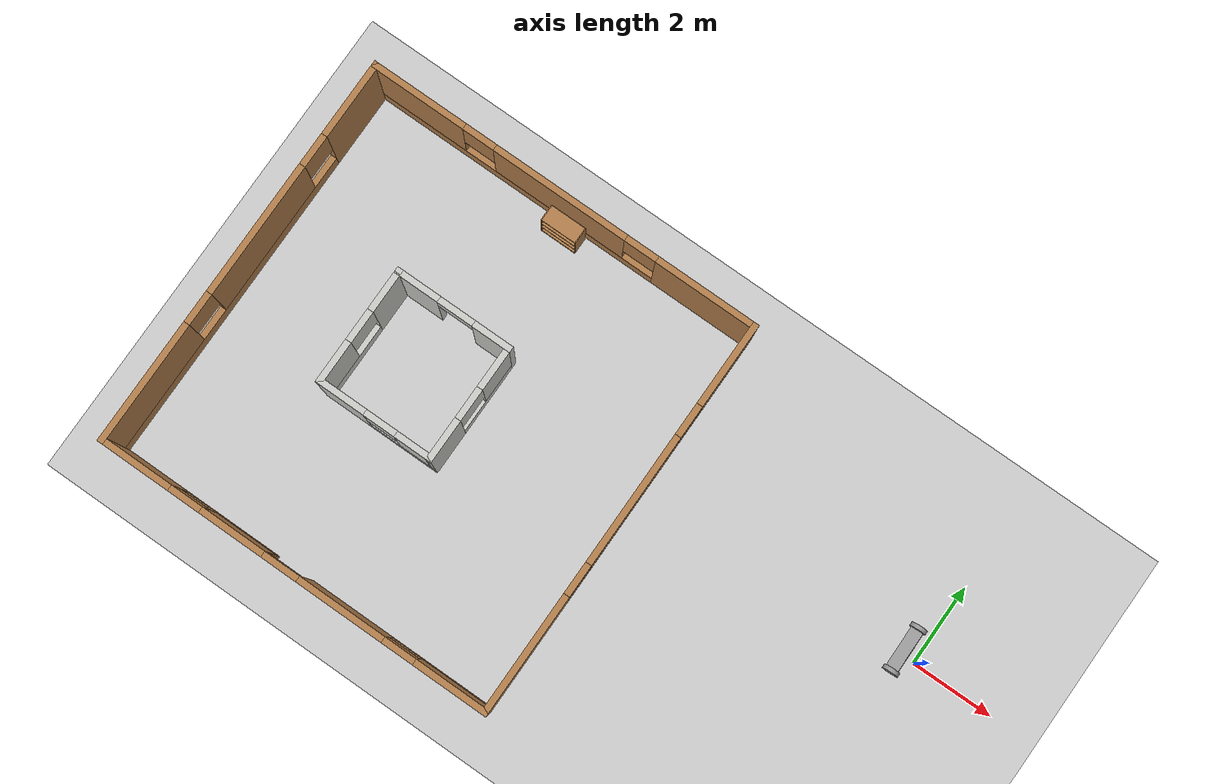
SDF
<sdf version="1.6">
 <world name="default">
  <plugin name="welcome_message" filename="libwelcome_message.so"/>
  <light name="sun" type="directional">
   <pose>0 0 10 0 -0 0</pose>
   <diffuse>0.8 0.8 0.8 1</diffuse>
   <specular>0.2 0.2 0.2 1</specular>
   <attenuation>
    <range>1000</range>
    <constant>0.9</constant>
    <linear>0.01</linear>
    <quadratic>0.001</quadratic>
   </attenuation>
   <direction>-0.5 0.1 -0.9</direction>
  </light>
  <model name="ground_plane">
   <static>1</static>
   <link name="link">
    <collision name="collision">
     <geometry><plane><normal>0 0 1</normal><size>100 100</size></plane></geometry>
     <surface>
      <contact><collide_bitmask>65535</collide_bitmask></contact>
      <friction><ode><mu>100</mu><mu2>50</mu2></ode></friction>
     </surface>
    </collision>
    <visual name="visual">
     <cast_shadows>0</cast_shadows>
     <geometry><plane><normal>0 0 1</normal><size>100 100</size></plane></geometry>
     <material>
      <script><uri>file://media/materials/scripts/gazebo.material</uri><name>Gazebo/Grey</name></script>
     </material>
    </visual>
   </link>
  </model>
  <gravity>0 0 -9.8</gravity>
  <magnetic_field>6e-06 2.3e-05 -4.2e-05</magnetic_field>
  <atmosphere type="adiabatic"/>
  <physics name="default_physics" default="0" type="ode">
   <max_step_size>0.001</max_step_size>
   <real_time_factor>1</real_time_factor>
   <real_time_update_rate>1000</real_time_update_rate>
  </physics>
  <scene><ambient>0.4 0.4 0.4 1</ambient><background>0.7 0.7 0.7 1</background><shadows>1</shadows></scene>
  <spherical_coordinates>
   <surface_model>EARTH_WGS84</surface_model>
   <latitude_deg>0</latitude_deg>
   <longitude_deg>0</longitude_deg>
   <elevation>0</elevation>
   <heading_deg>0</heading_deg>
  </spherical_coordinates>
  <model name="Building">
   <pose>-11.9528 -1.23874 0 0 -0 0</pose>
   <link name="Wall_10">
    <pose>-0.487001 1.567 0 0 -0 3.14159</pose>
    <visual name="Wall_10_Visual_0">
     <pose>-1.01 0 1.25 0 -0 0</pose>
     <geometry><box><size>0.979999 0.15 2.5</size></box></geometry>
     <material>
      <script><uri>file://media/materials/scripts/gazebo.material</uri><name>Gazebo/CeilingTiled</name></script>
      <ambient>1 1 1 1</ambient>
     </material>
     <meta><layer>0</layer></meta>
    </visual>
    <collision name="Wall_10_Collision_0">
     <geometry><box><size>0.979999 0.15 2.5</size></box></geometry>
     <pose>-1.01 0 1.25 0 -0 0</pose>
    </collision>
    <visual name="Wall_10_Visual_1">
     <pose>0.94 0 1.25 0 -0 0</pose>
     <geometry><box><size>1.12 0.15 2.5</size></box></geometry>
     <material>
      <script><uri>file://media/materials/scripts/gazebo.material</uri><name>Gazebo/CeilingTiled</name></script>
      <ambient>1 1 1 1</ambient>
     </material>
     <meta><layer>0</layer></meta>
    </visual>
    <collision name="Wall_10_Collision_1">
     <geometry><box><size>1.12 0.15 2.5</size></box></geometry>
     <pose>0.94 0 1.25 0 -0 0</pose>
    </collision>
    <visual name="Wall_10_Visual_2">
     <pose>-0.070001 0 2.25 0 -0 0</pose>
     <geometry><box><size>0.9 0.15 0.5</size></box></geometry>
     <material>
      <script><uri>file://media/materials/scripts/gazebo.material</uri><name>Gazebo/CeilingTiled</name></script>
      <ambient>1 1 1 1</ambient>
     </material>
     <meta><layer>0</layer></meta>
    </visual>
    <collision name="Wall_10_Collision_2">
     <geometry><box><size>0.9 0.15 0.5</size></box></geometry>
     <pose>-0.070001 0 2.25 0 -0 0</pose>
    </collision>
   </link>
   <link name="Wall_2">
    <pose>-4.925 0 0 0 0 -1.5708</pose>
    <visual name="Wall_2_Visual_0">
     <pose>-4.024 0 1.25 0 -0 0</pose>
     <geometry><box><size>1.952 0.15 2.5</size></box></geometry>
     <material>
      <script><uri>file://media/materials/scripts/gazebo.material</uri><name>Gazebo/Wood</name></script>
      <ambient>0.760784 0.662745 0.627451 1</ambient>
     </material>
     <meta><layer>0</layer></meta>
    </visual>
    <collision name="Wall_2_Collision_0">
     <geometry><box><size>1.952 0.15 2.5</size></box></geometry>
     <pose>-4.024 0 1.25 0 -0 0</pose>
    </collision>
    <visual name="Wall_2_Visual_1">
     <pose>0.976 0 0.25 0 -0 0</pose>
     <geometry><box><size>8.048 0.15 0.5</size></box></geometry>
     <material>
      <script><uri>file://media/materials/scripts/gazebo.material</uri><name>Gazebo/Wood</name></script>
      <ambient>0.760784 0.662745 0.627451 1</ambient>
     </material>
     <meta><layer>0</layer></meta>
    </visual>
    <collision name="Wall_2_Collision_1">
     <geometry><box><size>8.048 0.15 0.5</size></box></geometry>
     <pose>0.976 0 0.25 0 -0 0</pose>
    </collision>
    <visual name="Wall_2_Visual_2">
     <pose>-0.5665 0 1.5 0 -0 0</pose>
     <geometry><box><size>3.363 0.15 2</size></box></geometry>
     <material>
      <script><uri>file://media/materials/scripts/gazebo.material</uri><name>Gazebo/Wood</name></script>
      <ambient>0.760784 0.662745 0.627451 1</ambient>
     </material>
     <meta><layer>0</layer></meta>
    </visual>
    <collision name="Wall_2_Collision_2">
     <geometry><box><size>3.363 0.15 2</size></box></geometry>
     <pose>-0.5665 0 1.5 0 -0 0</pose>
    </collision>
    <visual name="Wall_2_Visual_3">
     <pose>3.4575 0 1.5 0 -0 0</pose>
     <geometry><box><size>3.085 0.15 2</size></box></geometry>
     <material>
      <script><uri>file://media/materials/scripts/gazebo.material</uri><name>Gazebo/Wood</name></script>
      <ambient>0.760784 0.662745 0.627451 1</ambient>
     </material>
     <meta><layer>0</layer></meta>
    </visual>
    <collision name="Wall_2_Collision_3">
     <geometry><box><size>3.085 0.15 2</size></box></geometry>
     <pose>3.4575 0 1.5 0 -0 0</pose>
    </collision>
    <visual name="Wall_2_Visual_4">
     <pose>-2.648 0 1.9 0 -0 0</pose>
     <geometry><box><size>0.8 0.15 1.2</size></box></geometry>
     <material>
      <script><uri>file://media/materials/scripts/gazebo.material</uri><name>Gazebo/Wood</name></script>
      <ambient>0.760784 0.662745 0.627451 1</ambient>
     </material>
     <meta><layer>0</layer></meta>
    </visual>
    <collision name="Wall_2_Collision_4">
     <geometry><box><size>0.8 0.15 1.2</size></box></geometry>
     <pose>-2.648 0 1.9 0 -0 0</pose>
    </collision>
    <visual name="Wall_2_Visual_5">
     <pose>1.515 0 1.9 0 -0 0</pose>
     <geometry><box><size>0.8 0.15 1.2</size></box></geometry>
     <material>
      <script><uri>file://media/materials/scripts/gazebo.material</uri><name>Gazebo/Wood</name></script>
      <ambient>0.760784 0.662745 0.627451 1</ambient>
     </material>
     <meta><layer>0</layer></meta>
    </visual>
    <collision name="Wall_2_Collision_5">
     <geometry><box><size>0.8 0.15 1.2</size></box></geometry>
     <pose>1.515 0 1.9 0 -0 0</pose>
    </collision>
   </link>
   <link name="Wall_3">
    <pose>0 -4.925 0 0 -0 0</pose>
    <visual name="Wall_3_Visual_0">
     <pose>-4.0815 0 1.25 0 -0 0</pose>
     <geometry><box><size>1.837 0.15 2.5</size></box></geometry>
     <material>
      <script><uri>file://media/materials/scripts/gazebo.material</uri><name>Gazebo/Wood</name></script>
      <ambient>0.760784 0.662745 0.627451 1</ambient>
     </material>
     <meta><layer>0</layer></meta>
    </visual>
    <collision name="Wall_3_Collision_0">
     <geometry><box><size>1.837 0.15 2.5</size></box></geometry>
     <pose>-4.0815 0 1.25 0 -0 0</pose>
    </collision>
    <visual name="Wall_3_Visual_1">
     <pose>1.241 0 1.25 0 -0 0</pose>
     <geometry><box><size>2.186 0.15 2.5</size></box></geometry>
     <material>
      <script><uri>file://media/materials/scripts/gazebo.material</uri><name>Gazebo/Wood</name></script>
      <ambient>0.760784 0.662745 0.627451 1</ambient>
     </material>
     <meta><layer>0</layer></meta>
    </visual>
    <collision name="Wall_3_Collision_1">
     <geometry><box><size>2.186 0.15 2.5</size></box></geometry>
     <pose>1.241 0 1.25 0 -0 0</pose>
    </collision>
    <visual name="Wall_3_Visual_2">
     <pose>-1.9575 0 0.25 0 -0 0</pose>
     <geometry><box><size>2.411 0.15 0.5</size></box></geometry>
     <material>
      <script><uri>file://media/materials/scripts/gazebo.material</uri><name>Gazebo/Wood</name></script>
      <ambient>0.760784 0.662745 0.627451 1</ambient>
     </material>
     <meta><layer>0</layer></meta>
    </visual>
    <collision name="Wall_3_Collision_2">
     <geometry><box><size>2.411 0.15 0.5</size></box></geometry>
     <pose>-1.9575 0 0.25 0 -0 0</pose>
    </collision>
    <visual name="Wall_3_Visual_3">
     <pose>3.667 0 0.25 0 -0 0</pose>
     <geometry><box><size>2.666 0.15 0.5</size></box></geometry>
     <material>
      <script><uri>file://media/materials/scripts/gazebo.material</uri><name>Gazebo/Wood</name></script>
      <ambient>0.760784 0.662745 0.627451 1</ambient>
     </material>
     <meta><layer>0</layer></meta>
    </visual>
    <collision name="Wall_3_Collision_3">
     <geometry><box><size>2.666 0.15 0.5</size></box></geometry>
     <pose>3.667 0 0.25 0 -0 0</pose>
    </collision>
    <visual name="Wall_3_Visual_4">
     <pose>-1.5575 0 1.5 0 -0 0</pose>
     <geometry><box><size>1.611 0.15 2</size></box></geometry>
     <material>
      <script><uri>file://media/materials/scripts/gazebo.material</uri><name>Gazebo/Wood</name></script>
      <ambient>0.760784 0.662745 0.627451 1</ambient>
     </material>
     <meta><layer>0</layer></meta>
    </visual>
    <collision name="Wall_3_Collision_4">
     <geometry><box><size>1.611 0.15 2</size></box></geometry>
     <pose>-1.5575 0 1.5 0 -0 0</pose>
    </collision>
    <visual name="Wall_3_Visual_5">
     <pose>-1.5575 0 1.5 0 -0 0</pose>
     <geometry><box><size>1.611 0.15 2</size></box></geometry>
     <material>
      <script><uri>file://media/materials/scripts/gazebo.material</uri><name>Gazebo/Wood</name></script>
      <ambient>0.760784 0.662745 0.627451 1</ambient>
     </material>
     <meta><layer>0</layer></meta>
    </visual>
    <collision name="Wall_3_Collision_5">
     <geometry><box><size>1.611 0.15 2</size></box></geometry>
     <pose>-1.5575 0 1.5 0 -0 0</pose>
    </collision>
    <visual name="Wall_3_Visual_6">
     <pose>4.067 0 1.5 0 -0 0</pose>
     <geometry><box><size>1.866 0.15 2</size></box></geometry>
     <material>
      <script><uri>file://media/materials/scripts/gazebo.material</uri><name>Gazebo/Wood</name></script>
      <ambient>0.760784 0.662745 0.627451 1</ambient>
     </material>
     <meta><layer>0</layer></meta>
    </visual>
    <collision name="Wall_3_Collision_6">
     <geometry><box><size>1.866 0.15 2</size></box></geometry>
     <pose>4.067 0 1.5 0 -0 0</pose>
    </collision>
    <visual name="Wall_3_Visual_7">
     <pose>-2.763 0 1.9 0 -0 0</pose>
     <geometry><box><size>0.8 0.15 1.2</size></box></geometry>
     <material>
      <script><uri>file://media/materials/scripts/gazebo.material</uri><name>Gazebo/Wood</name></script>
      <ambient>0.760784 0.662745 0.627451 1</ambient>
     </material>
     <meta><layer>0</layer></meta>
    </visual>
    <collision name="Wall_3_Collision_7">
     <geometry><box><size>0.8 0.15 1.2</size></box></geometry>
     <pose>-2.763 0 1.9 0 -0 0</pose>
    </collision>
    <visual name="Wall_3_Visual_8">
     <pose>2.734 0 1.9 0 -0 0</pose>
     <geometry><box><size>0.8 0.15 1.2</size></box></geometry>
     <material>
      <script><uri>file://media/materials/scripts/gazebo.material</uri><name>Gazebo/Wood</name></script>
      <ambient>0.760784 0.662745 0.627451 1</ambient>
     </material>
     <meta><layer>0</layer></meta>
    </visual>
    <collision name="Wall_3_Collision_8">
     <geometry><box><size>0.8 0.15 1.2</size></box></geometry>
     <pose>2.734 0 1.9 0 -0 0</pose>
    </collision>
    <visual name="Wall_3_Visual_9">
     <pose>-0.302 0 2.25 0 -0 0</pose>
     <geometry><box><size>0.9 0.15 0.5</size></box></geometry>
     <material>
      <script><uri>file://media/materials/scripts/gazebo.material</uri><name>Gazebo/Wood</name></script>
      <ambient>0.760784 0.662745 0.627451 1</ambient>
     </material>
     <meta><layer>0</layer></meta>
    </visual>
    <collision name="Wall_3_Collision_9">
     <geometry><box><size>0.9 0.15 0.5</size></box></geometry>
     <pose>-0.302 0 2.25 0 -0 0</pose>
    </collision>
    <visual name="Wall_3_Visual_10">
     <pose>-0.302 0 2.25 0 -0 0</pose>
     <geometry><box><size>0.9 0.15 0.5</size></box></geometry>
     <material>
      <script><uri>file://media/materials/scripts/gazebo.material</uri><name>Gazebo/Wood</name></script>
      <ambient>0.760784 0.662745 0.627451 1</ambient>
     </material>
     <meta><layer>0</layer></meta>
    </visual>
    <collision name="Wall_3_Collision_10">
     <geometry><box><size>0.9 0.15 0.5</size></box></geometry>
     <pose>-0.302 0 2.25 0 -0 0</pose>
    </collision>
   </link>
   <link name="Wall_4">
    <pose>4.925 0 0 0 -0 1.5708</pose>
    <visual name="Wall_4_Visual_0">
     <pose>-3.492 0 1.25 0 -0 0</pose>
     <geometry><box><size>3.016 0.15 2.5</size></box></geometry>
     <material>
      <script><uri>file://media/materials/scripts/gazebo.material</uri><name>Gazebo/Wood</name></script>
      <ambient>0.760784 0.662745 0.627451 1</ambient>
     </material>
     <meta><layer>0</layer></meta>
    </visual>
    <collision name="Wall_4_Collision_0">
     <geometry><box><size>3.016 0.15 2.5</size></box></geometry>
     <pose>-3.492 0 1.25 0 -0 0</pose>
    </collision>
    <visual name="Wall_4_Visual_1">
     <pose>1.508 0 0.25 0 -0 0</pose>
     <geometry><box><size>6.984 0.15 0.5</size></box></geometry>
     <material>
      <script><uri>file://media/materials/scripts/gazebo.material</uri><name>Gazebo/Wood</name></script>
      <ambient>0.760784 0.662745 0.627451 1</ambient>
     </material>
     <meta><layer>0</layer></meta>
    </visual>
    <collision name="Wall_4_Collision_1">
     <geometry><box><size>6.984 0.15 0.5</size></box></geometry>
     <pose>1.508 0 0.25 0 -0 0</pose>
    </collision>
    <visual name="Wall_4_Visual_2">
     <pose>0.4515 0 1.5 0 -0 0</pose>
     <geometry><box><size>3.271 0.15 2</size></box></geometry>
     <material>
      <script><uri>file://media/materials/scripts/gazebo.material</uri><name>Gazebo/Wood</name></script>
      <ambient>0.760784 0.662745 0.627451 1</ambient>
     </material>
     <meta><layer>0</layer></meta>
    </visual>
    <collision name="Wall_4_Collision_2">
     <geometry><box><size>3.271 0.15 2</size></box></geometry>
     <pose>0.4515 0 1.5 0 -0 0</pose>
    </collision>
    <visual name="Wall_4_Visual_3">
     <pose>3.9435 0 1.5 0 -0 0</pose>
     <geometry><box><size>2.113 0.15 2</size></box></geometry>
     <material>
      <script><uri>file://media/materials/scripts/gazebo.material</uri><name>Gazebo/Wood</name></script>
      <ambient>0.760784 0.662745 0.627451 1</ambient>
     </material>
     <meta><layer>0</layer></meta>
    </visual>
    <collision name="Wall_4_Collision_3">
     <geometry><box><size>2.113 0.15 2</size></box></geometry>
     <pose>3.9435 0 1.5 0 -0 0</pose>
    </collision>
    <visual name="Wall_4_Visual_4">
     <pose>-1.584 0 1.9 0 -0 0</pose>
     <geometry><box><size>0.8 0.15 1.2</size></box></geometry>
     <material>
      <script><uri>file://media/materials/scripts/gazebo.material</uri><name>Gazebo/Wood</name></script>
      <ambient>0.760784 0.662745 0.627451 1</ambient>
     </material>
     <meta><layer>0</layer></meta>
    </visual>
    <collision name="Wall_4_Collision_4">
     <geometry><box><size>0.8 0.15 1.2</size></box></geometry>
     <pose>-1.584 0 1.9 0 -0 0</pose>
    </collision>
    <visual name="Wall_4_Visual_5">
     <pose>2.487 0 1.9 0 -0 0</pose>
     <geometry><box><size>0.8 0.15 1.2</size></box></geometry>
     <material>
      <script><uri>file://media/materials/scripts/gazebo.material</uri><name>Gazebo/Wood</name></script>
      <ambient>0.760784 0.662745 0.627451 1</ambient>
     </material>
     <meta><layer>0</layer></meta>
    </visual>
    <collision name="Wall_4_Collision_5">
     <geometry><box><size>0.8 0.15 1.2</size></box></geometry>
     <pose>2.487 0 1.9 0 -0 0</pose>
    </collision>
   </link>
   <link name="Wall_5">
    <pose>0 4.925 0 0 -0 3.14159</pose>
    <visual name="Wall_5_Visual_0">
     <pose>-3.7105 0 1.25 0 -0 0</pose>
     <geometry><box><size>2.579 0.15 2.5</size></box></geometry>
     <material>
      <script><uri>file://media/materials/scripts/gazebo.material</uri><name>Gazebo/Wood</name></script>
      <ambient>1 1 1 1</ambient>
     </material>
     <meta><layer>0</layer></meta>
    </visual>
    <collision name="Wall_5_Collision_0">
     <geometry><box><size>2.579 0.15 2.5</size></box></geometry>
     <pose>-3.7105 0 1.25 0 -0 0</pose>
    </collision>
    <visual name="Wall_5_Visual_1">
     <pose>1.2895 0 0.25 0 -0 0</pose>
     <geometry><box><size>7.421 0.15 0.5</size></box></geometry>
     <material>
      <script><uri>file://media/materials/scripts/gazebo.material</uri><name>Gazebo/Wood</name></script>
      <ambient>1 1 1 1</ambient>
     </material>
     <meta><layer>0</layer></meta>
    </visual>
    <collision name="Wall_5_Collision_1">
     <geometry><box><size>7.421 0.15 0.5</size></box></geometry>
     <pose>1.2895 0 0.25 0 -0 0</pose>
    </collision>
    <visual name="Wall_5_Visual_2">
     <pose>0.0835 0 1.5 0 -0 0</pose>
     <geometry><box><size>3.409 0.15 2</size></box></geometry>
     <material>
      <script><uri>file://media/materials/scripts/gazebo.material</uri><name>Gazebo/Wood</name></script>
      <ambient>1 1 1 1</ambient>
     </material>
     <meta><layer>0</layer></meta>
    </visual>
    <collision name="Wall_5_Collision_2">
     <geometry><box><size>3.409 0.15 2</size></box></geometry>
     <pose>0.0835 0 1.5 0 -0 0</pose>
    </collision>
    <visual name="Wall_5_Visual_3">
     <pose>3.794 0 1.5 0 -0 0</pose>
     <geometry><box><size>2.412 0.15 2</size></box></geometry>
     <material>
      <script><uri>file://media/materials/scripts/gazebo.material</uri><name>Gazebo/Wood</name></script>
      <ambient>1 1 1 1</ambient>
     </material>
     <meta><layer>0</layer></meta>
    </visual>
    <collision name="Wall_5_Collision_3">
     <geometry><box><size>2.412 0.15 2</size></box></geometry>
     <pose>3.794 0 1.5 0 -0 0</pose>
    </collision>
    <visual name="Wall_5_Visual_4">
     <pose>-2.021 0 1.9 0 -0 0</pose>
     <geometry><box><size>0.8 0.15 1.2</size></box></geometry>
     <material>
      <script><uri>file://media/materials/scripts/gazebo.material</uri><name>Gazebo/Wood</name></script>
      <ambient>1 1 1 1</ambient>
     </material>
     <meta><layer>0</layer></meta>
    </visual>
    <collision name="Wall_5_Collision_4">
     <geometry><box><size>0.8 0.15 1.2</size></box></geometry>
     <pose>-2.021 0 1.9 0 -0 0</pose>
    </collision>
    <visual name="Wall_5_Visual_5">
     <pose>2.188 0 1.9 0 -0 0</pose>
     <geometry><box><size>0.8 0.15 1.2</size></box></geometry>
     <material>
      <script><uri>file://media/materials/scripts/gazebo.material</uri><name>Gazebo/Wood</name></script>
      <ambient>1 1 1 1</ambient>
     </material>
     <meta><layer>0</layer></meta>
    </visual>
    <collision name="Wall_5_Collision_5">
     <geometry><box><size>0.8 0.15 1.2</size></box></geometry>
     <pose>2.188 0 1.9 0 -0 0</pose>
    </collision>
   </link>
   <link name="Wall_7">
    <pose>-1.912 0.142 0 0 0 -1.5708</pose>
    <visual name="Wall_7_Visual_0">
     <pose>-0.9495 0 1.25 0 -0 0</pose>
     <geometry><box><size>1.101 0.15 2.5</size></box></geometry>
     <material>
      <script><uri>file://media/materials/scripts/gazebo.material</uri><name>Gazebo/CeilingTiled</name></script>
      <ambient>0.760784 0.662745 0.627451 1</ambient>
     </material>
     <meta><layer>0</layer></meta>
    </visual>
    <collision name="Wall_7_Collision_0">
     <geometry><box><size>1.101 0.15 2.5</size></box></geometry>
     <pose>-0.9495 0 1.25 0 -0 0</pose>
    </collision>
    <visual name="Wall_7_Visual_1">
     <pose>0.5505 0 0.25 0 -0 0</pose>
     <geometry><box><size>1.899 0.15 0.5</size></box></geometry>
     <material>
      <script><uri>file://media/materials/scripts/gazebo.material</uri><name>Gazebo/CeilingTiled</name></script>
      <ambient>0.760784 0.662745 0.627451 1</ambient>
     </material>
     <meta><layer>0</layer></meta>
    </visual>
    <collision name="Wall_7_Collision_1">
     <geometry><box><size>1.899 0.15 0.5</size></box></geometry>
     <pose>0.5505 0 0.25 0 -0 0</pose>
    </collision>
    <visual name="Wall_7_Visual_2">
     <pose>0.9505 0 1.5 0 -0 0</pose>
     <geometry><box><size>1.099 0.15 2</size></box></geometry>
     <material>
      <script><uri>file://media/materials/scripts/gazebo.material</uri><name>Gazebo/CeilingTiled</name></script>
      <ambient>0.760784 0.662745 0.627451 1</ambient>
     </material>
     <meta><layer>0</layer></meta>
    </visual>
    <collision name="Wall_7_Collision_2">
     <geometry><box><size>1.099 0.15 2</size></box></geometry>
     <pose>0.9505 0 1.5 0 -0 0</pose>
    </collision>
    <visual name="Wall_7_Visual_3">
     <pose>0.001 0 1.9 0 -0 0</pose>
     <geometry><box><size>0.8 0.15 1.2</size></box></geometry>
     <material>
      <script><uri>file://media/materials/scripts/gazebo.material</uri><name>Gazebo/CeilingTiled</name></script>
      <ambient>0.760784 0.662745 0.627451 1</ambient>
     </material>
     <meta><layer>0</layer></meta>
    </visual>
    <collision name="Wall_7_Collision_3">
     <geometry><box><size>0.8 0.15 1.2</size></box></geometry>
     <pose>0.001 0 1.9 0 -0 0</pose>
    </collision>
   </link>
   <link name="Wall_8">
    <pose>-0.487001 -1.283 0 0 -0 0</pose>
    <visual name="Wall_8_Visual_0">
     <pose>-0.8805 0 1.25 0 -0 0</pose>
     <geometry><box><size>1.239 0.15 2.5</size></box></geometry>
     <material>
      <script><uri>file://media/materials/scripts/gazebo.material</uri><name>Gazebo/CeilingTiled</name></script>
      <ambient>0.760784 0.662745 0.627451 1</ambient>
     </material>
     <meta><layer>0</layer></meta>
    </visual>
    <collision name="Wall_8_Collision_0">
     <geometry><box><size>1.239 0.15 2.5</size></box></geometry>
     <pose>-0.8805 0 1.25 0 -0 0</pose>
    </collision>
    <visual name="Wall_8_Visual_1">
     <pose>0.6195 0 0.25 0 -0 0</pose>
     <geometry><box><size>1.761 0.15 0.5</size></box></geometry>
     <material>
      <script><uri>file://media/materials/scripts/gazebo.material</uri><name>Gazebo/CeilingTiled</name></script>
      <ambient>0.760784 0.662745 0.627451 1</ambient>
     </material>
     <meta><layer>0</layer></meta>
    </visual>
    <collision name="Wall_8_Collision_1">
     <geometry><box><size>1.761 0.15 0.5</size></box></geometry>
     <pose>0.6195 0 0.25 0 -0 0</pose>
    </collision>
    <visual name="Wall_8_Visual_2">
     <pose>1.0195 0 1.5 0 -0 0</pose>
     <geometry><box><size>0.960999 0.15 2</size></box></geometry>
     <material>
      <script><uri>file://media/materials/scripts/gazebo.material</uri><name>Gazebo/CeilingTiled</name></script>
      <ambient>0.760784 0.662745 0.627451 1</ambient>
     </material>
     <meta><layer>0</layer></meta>
    </visual>
    <collision name="Wall_8_Collision_2">
     <geometry><box><size>0.960999 0.15 2</size></box></geometry>
     <pose>1.0195 0 1.5 0 -0 0</pose>
    </collision>
    <visual name="Wall_8_Visual_3">
     <pose>0.139001 0 1.9 0 -0 0</pose>
     <geometry><box><size>0.8 0.15 1.2</size></box></geometry>
     <material>
      <script><uri>file://media/materials/scripts/gazebo.material</uri><name>Gazebo/CeilingTiled</name></script>
      <ambient>0.760784 0.662745 0.627451 1</ambient>
     </material>
     <meta><layer>0</layer></meta>
    </visual>
    <collision name="Wall_8_Collision_3">
     <geometry><box><size>0.8 0.15 1.2</size></box></geometry>
     <pose>0.139001 0 1.9 0 -0 0</pose>
    </collision>
   </link>
   <link name="Wall_9">
    <pose>0.937999 0.142 0 0 -0 1.5708</pose>
    <visual name="Wall_9_Visual_0">
     <pose>-0.962 0 1.25 0 -0 0</pose>
     <geometry><box><size>1.076 0.15 2.5</size></box></geometry>
     <material>
      <script><uri>file://media/materials/scripts/gazebo.material</uri><name>Gazebo/CeilingTiled</name></script>
      <ambient>0.760784 0.662745 0.627451 1</ambient>
     </material>
     <meta><layer>0</layer></meta>
    </visual>
    <collision name="Wall_9_Collision_0">
     <geometry><box><size>1.076 0.15 2.5</size></box></geometry>
     <pose>-0.962 0 1.25 0 -0 0</pose>
    </collision>
    <visual name="Wall_9_Visual_1">
     <pose>0.538 0 0.25 0 -0 0</pose>
     <geometry><box><size>1.924 0.15 0.5</size></box></geometry>
     <material>
      <script><uri>file://media/materials/scripts/gazebo.material</uri><name>Gazebo/CeilingTiled</name></script>
      <ambient>0.760784 0.662745 0.627451 1</ambient>
     </material>
     <meta><layer>0</layer></meta>
    </visual>
    <collision name="Wall_9_Collision_1">
     <geometry><box><size>1.924 0.15 0.5</size></box></geometry>
     <pose>0.538 0 0.25 0 -0 0</pose>
    </collision>
    <visual name="Wall_9_Visual_2">
     <pose>0.938 0 1.5 0 -0 0</pose>
     <geometry><box><size>1.124 0.15 2</size></box></geometry>
     <material>
      <script><uri>file://media/materials/scripts/gazebo.material</uri><name>Gazebo/CeilingTiled</name></script>
      <ambient>0.760784 0.662745 0.627451 1</ambient>
     </material>
     <meta><layer>0</layer></meta>
    </visual>
    <collision name="Wall_9_Collision_2">
     <geometry><box><size>1.124 0.15 2</size></box></geometry>
     <pose>0.938 0 1.5 0 -0 0</pose>
    </collision>
    <visual name="Wall_9_Visual_3">
     <pose>-0.024 0 1.9 0 -0 0</pose>
     <geometry><box><size>0.8 0.15 1.2</size></box></geometry>
     <material>
      <script><uri>file://media/materials/scripts/gazebo.material</uri><name>Gazebo/CeilingTiled</name></script>
      <ambient>0.760784 0.662745 0.627451 1</ambient>
     </material>
     <meta><layer>0</layer></meta>
    </visual>
    <collision name="Wall_9_Collision_3">
     <geometry><box><size>0.8 0.15 1.2</size></box></geometry>
     <pose>-0.024 0 1.9 0 -0 0</pose>
    </collision>
   </link>
   <static>1</static>
  </model>
  <model name="robot">
   <link name="link_0">
    <inertial>
     <mass>1</mass>
     <inertia>
      <ixx>0.166667</ixx>
      <ixy>0</ixy>
      <ixz>0</ixz>
      <iyy>0.166667</iyy>
      <iyz>0</iyz>
      <izz>0.166667</izz>
     </inertia>
    </inertial>
    <visual name="visual">
     <geometry><box><size>0.3 1 0.1</size></box></geometry>
     <material>
      <lighting>1</lighting>
      <script><uri>file://media/materials/scripts/gazebo.material</uri><name>Gazebo/Grey</name></script>
      <shader type="pixel"><normal_map>__default__</normal_map></shader>
      <ambient>0.3 0.3 0.3 1</ambient>
      <diffuse>0.7 0.7 0.7 1</diffuse>
      <specular>0.01 0.01 0.01 1</specular>
      <emissive>0 0 0 1</emissive>
     </material>
    </visual>
    <collision name="collision">
     <geometry><box><size>0.3 1 0.1</size></box></geometry>
     <surface>
      <friction>
       <ode><mu>1</mu><mu2>1</mu2><fdir1>0 0 0</fdir1><slip1>0</slip1><slip2>0</slip2></ode>
       <torsional>
        <coefficient>1</coefficient>
        <patch_radius>0</patch_radius>
        <surface_radius>0</surface_radius>
        <use_patch_radius>1</use_patch_radius>
        <ode><slip>0</slip></ode>
       </torsional>
      </friction>
      <bounce><restitution_coefficient>0</restitution_coefficient><threshold>1e+06</threshold></bounce>
      <contact>
       <collide_without_contact>0</collide_without_contact>
       <collide_without_contact_bitmask>1</collide_without_contact_bitmask>
       <collide_bitmask>1</collide_bitmask>
       <ode>
        <soft_cfm>0</soft_cfm>
        <soft_erp>0.2</soft_erp>
        <kp>1e+13</kp>
        <kd>1</kd>
        <max_vel>0.01</max_vel>
        <min_depth>0</min_depth>
       </ode>
       <bullet>
        <split_impulse>1</split_impulse>
        <split_impulse_penetration_threshold>-0.01</split_impulse_penetration_threshold>
        <soft_cfm>0</soft_cfm>
        <soft_erp>0.2</soft_erp>
        <kp>1e+13</kp>
        <kd>1</kd>
       </bullet>
      </contact>
     </surface>
    </collision>
   </link>
   <link name="link_1">
    <pose>0 -0.550019 0 1.5707 -0 0</pose>
    <inertial>
     <mass>1</mass>
     <inertia><ixx>0.145833</ixx><ixy>0</ixy><ixz>0</ixz><iyy>0.145833</iyy><iyz>0</iyz><izz>0.125</izz></inertia>
    </inertial>
    <visual name="visual">
     <geometry><cylinder><radius>0.2</radius><length>0.1</length></cylinder></geometry>
     <material>
      <lighting>1</lighting>
      <script><uri>file://media/materials/scripts/gazebo.material</uri><name>Gazebo/Grey</name></script>
      <shader type="pixel"><normal_map>__default__</normal_map></shader>
      <ambient>0.3 0.3 0.3 1</ambient>
      <diffuse>0.7 0.7 0.7 1</diffuse>
      <specular>0.01 0.01 0.01 1</specular>
      <emissive>0 0 0 1</emissive>
     </material>
    </visual>
    <collision name="collision">
     <geometry><cylinder><radius>0.2</radius><length>0.1</length></cylinder></geometry>
     <surface>
      <friction>
       <ode><mu>1</mu><mu2>1</mu2><fdir1>0 0 0</fdir1><slip1>0</slip1><slip2>0</slip2></ode>
       <torsional>
        <coefficient>1</coefficient>
        <patch_radius>0</patch_radius>
        <surface_radius>0</surface_radius>
        <use_patch_radius>1</use_patch_radius>
        <ode><slip>0</slip></ode>
       </torsional>
      </friction>
      <bounce><restitution_coefficient>0</restitution_coefficient><threshold>1e+06</threshold></bounce>
      <contact>
       <collide_without_contact>0</collide_without_contact>
       <collide_without_contact_bitmask>1</collide_without_contact_bitmask>
       <collide_bitmask>1</collide_bitmask>
       <ode>
        <soft_cfm>0</soft_cfm>
        <soft_erp>0.2</soft_erp>
        <kp>1e+13</kp>
        <kd>1</kd>
        <max_vel>0.01</max_vel>
        <min_depth>0</min_depth>
       </ode>
       <bullet>
        <split_impulse>1</split_impulse>
        <split_impulse_penetration_threshold>-0.01</split_impulse_penetration_threshold>
        <soft_cfm>0</soft_cfm>
        <soft_erp>0.2</soft_erp>
        <kp>1e+13</kp>
        <kd>1</kd>
       </bullet>
      </contact>
     </surface>
    </collision>
   </link>
   <link name="link_1_clone">
    <pose>0 0.550019 0 1.5707 -0 0</pose>
    <inertial>
     <mass>1</mass>
     <inertia><ixx>0.145833</ixx><ixy>0</ixy><ixz>0</ixz><iyy>0.145833</iyy><iyz>0</iyz><izz>0.125</izz></inertia>
    </inertial>
    <visual name="visual">
     <geometry><cylinder><radius>0.2</radius><length>0.1</length></cylinder></geometry>
     <material>
      <lighting>1</lighting>
      <script><uri>file://media/materials/scripts/gazebo.material</uri><name>Gazebo/Grey</name></script>
      <shader type="pixel"><normal_map>__default__</normal_map></shader>
      <ambient>0.3 0.3 0.3 1</ambient>
      <diffuse>0.7 0.7 0.7 1</diffuse>
      <specular>0.01 0.01 0.01 1</specular>
      <emissive>0 0 0 1</emissive>
     </material>
    </visual>
    <collision name="collision">
     <geometry><cylinder><radius>0.2</radius><length>0.1</length></cylinder></geometry>
     <surface>
      <friction>
       <ode><mu>1</mu><mu2>1</mu2><fdir1>0 0 0</fdir1><slip1>0</slip1><slip2>0</slip2></ode>
       <torsional>
        <coefficient>1</coefficient>
        <patch_radius>0</patch_radius>
        <surface_radius>0</surface_radius>
        <use_patch_radius>1</use_patch_radius>
        <ode><slip>0</slip></ode>
       </torsional>
      </friction>
      <bounce><restitution_coefficient>0</restitution_coefficient><threshold>1e+06</threshold></bounce>
      <contact>
       <collide_without_contact>0</collide_without_contact>
       <collide_without_contact_bitmask>1</collide_without_contact_bitmask>
       <collide_bitmask>1</collide_bitmask>
       <ode>
        <soft_cfm>0</soft_cfm>
        <soft_erp>0.2</soft_erp>
        <kp>1e+13</kp>
        <kd>1</kd>
        <max_vel>0.01</max_vel>
        <min_depth>0</min_depth>
       </ode>
       <bullet>
        <split_impulse>1</split_impulse>
        <split_impulse_penetration_threshold>-0.01</split_impulse_penetration_threshold>
        <soft_cfm>0</soft_cfm>
        <soft_erp>0.2</soft_erp>
        <kp>1e+13</kp>
        <kd>1</kd>
       </bullet>
      </contact>
     </surface>
    </collision>
   </link>
   <joint name="link_0_JOINT_0" type="revolute">
    <parent>link_0</parent>
    <child>link_1</child>
    <axis>
     <xyz>0 0 1</xyz>
     <use_parent_model_frame>0</use_parent_model_frame>
     <limit>
      <lower>-1.79769e+308</lower>
      <upper>1.79769e+308</upper>
      <effort>-1</effort>
      <velocity>-1</velocity>
     </limit>
     <dynamics>
      <spring_reference>0</spring_reference>
      <spring_stiffness>0</spring_stiffness>
      <damping>0</damping>
     </dynamics>
    </axis>
    <physics>
     <ode><limit><cfm>0</cfm><erp>0.2</erp></limit><suspension><cfm>0</cfm><erp>0.2</erp></suspension></ode>
    </physics>
   </joint>
   <joint name="link_0_JOINT_1" type="revolute">
    <parent>link_0</parent>
    <child>link_1_clone</child>
    <axis>
     <xyz>0 0 1</xyz>
     <use_parent_model_frame>0</use_parent_model_frame>
     <limit>
      <lower>-1.79769e+308</lower>
      <upper>1.79769e+308</upper>
      <effort>-1</effort>
      <velocity>-1</velocity>
     </limit>
     <dynamics>
      <spring_reference>0</spring_reference>
      <spring_stiffness>0</spring_stiffness>
      <damping>0</damping>
     </dynamics>
    </axis>
    <physics>
     <ode><limit><cfm>0</cfm><erp>0.2</erp></limit><suspension><cfm>0</cfm><erp>0.2</erp></suspension></ode>
    </physics>
   </joint>
   <static>0</static>
   <pose>-0.357187 0.109536 0.200005 0 -0.255128 0.015379</pose>
  </model>
  <model name="bookshelf">
   <static>1</static>
   <link name="link">
    <inertial><mass>1</mass></inertial>
    <collision name="back">
     <pose>0 0.005 0.6 0 -0 0</pose>
     <geometry><box><size>0.9 0.01 1.2</size></box></geometry>
    </collision>
    <visual name="visual1">
     <pose>0 0.005 0.6 0 -0 0</pose>
     <geometry><box><size>0.9 0.01 1.2</size></box></geometry>
     <material>
      <script><uri>file://media/materials/scripts/gazebo.material</uri><name>Gazebo/Wood</name></script>
     </material>
    </visual>
    <collision name="left_side">
     <pose>0.45 -0.195 0.6 0 -0 0</pose>
     <geometry><box><size>0.02 0.4 1.2</size></box></geometry>
    </collision>
    <visual name="visual2">
     <pose>0.45 -0.195 0.6 0 -0 0</pose>
     <geometry><box><size>0.02 0.4 1.2</size></box></geometry>
     <material>
      <script><uri>file://media/materials/scripts/gazebo.material</uri><name>Gazebo/Wood</name></script>
     </material>
    </visual>
    <collision name="right_side">
     <pose>-0.45 -0.195 0.6 0 -0 0</pose>
     <geometry><box><size>0.02 0.4 1.2</size></box></geometry>
    </collision>
    <visual name="visual3">
     <pose>-0.45 -0.195 0.6 0 -0 0</pose>
     <geometry><box><size>0.02 0.4 1.2</size></box></geometry>
     <material>
      <script><uri>file://media/materials/scripts/gazebo.material</uri><name>Gazebo/Wood</name></script>
     </material>
    </visual>
    <collision name="bottom">
     <pose>0 -0.195 0.03 0 -0 0</pose>
     <geometry><box><size>0.88 0.4 0.06</size></box></geometry>
    </collision>
    <visual name="visual4">
     <pose>0 -0.195 0.03 0 -0 0</pose>
     <geometry><box><size>0.88 0.4 0.06</size></box></geometry>
     <material>
      <script><uri>file://media/materials/scripts/gazebo.material</uri><name>Gazebo/Wood</name></script>
     </material>
    </visual>
    <collision name="top">
     <pose>0 -0.195 1.19 0 -0 0</pose>
     <geometry><box><size>0.88 0.4 0.02</size></box></geometry>
    </collision>
    <visual name="visual5">
     <pose>0 -0.195 1.19 0 -0 0</pose>
     <geometry><box><size>0.88 0.4 0.02</size></box></geometry>
     <material>
      <script><uri>file://media/materials/scripts/gazebo.material</uri><name>Gazebo/Wood</name></script>
     </material>
    </visual>
    <collision name="low_shelf">
     <pose>0 -0.195 0.43 0 -0 0</pose>
     <geometry><box><size>0.88 0.4 0.02</size></box></geometry>
    </collision>
    <visual name="visual6">
     <pose>0 -0.195 0.43 0 -0 0</pose>
     <geometry><box><size>0.88 0.4 0.02</size></box></geometry>
     <material>
      <script><uri>file://media/materials/scripts/gazebo.material</uri><name>Gazebo/Wood</name></script>
     </material>
    </visual>
    <collision name="high_shelf">
     <pose>0 -0.195 0.8 0 -0 0</pose>
     <geometry><box><size>0.88 0.4 0.02</size></box></geometry>
    </collision>
    <visual name="visual7">
     <pose>0 -0.195 0.8 0 -0 0</pose>
     <geometry><box><size>0.88 0.4 0.02</size></box></geometry>
     <material>
      <script><uri>file://media/materials/scripts/gazebo.material</uri><name>Gazebo/Wood</name></script>
     </material>
    </visual>
   </link>
   <pose>-11.7423 3.57163 0 0 -0 0</pose>
  </model>
 </world>
</sdf>
